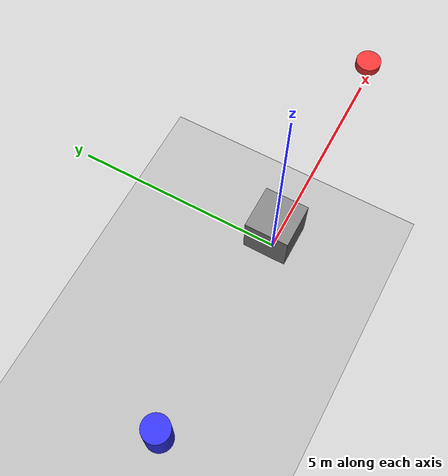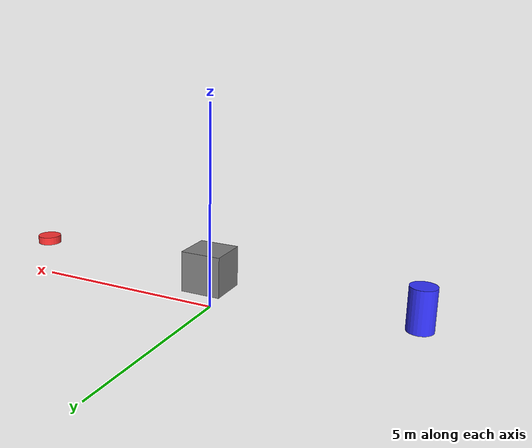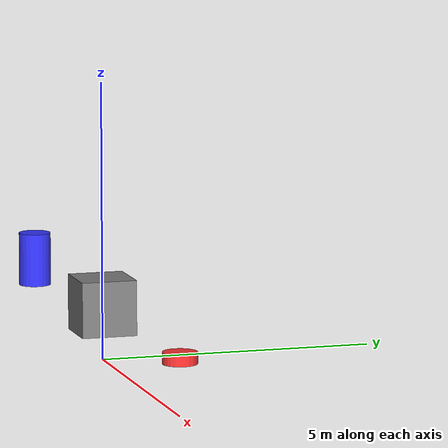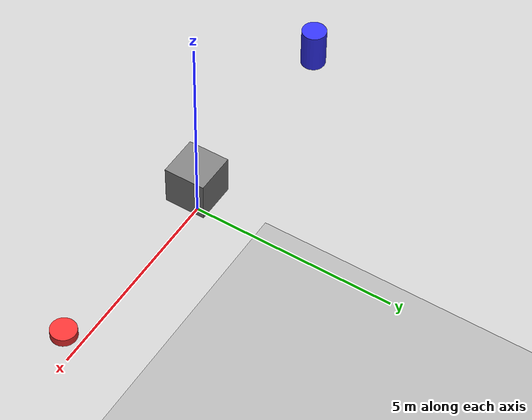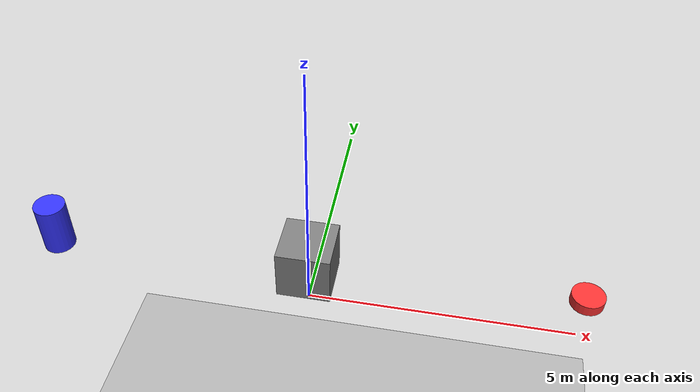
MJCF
<mujoco>
  <option gravity="0 0 -9.81"/>
  <worldbody>
    <!-- Support -->
    <body name="support" pos="0 0 1">
      <geom type="box" size="0.5 0.5 0.5" rgba="0.5 0.5 0.5 1"/>
    </body>
    <!-- Ground Surface -->
    <body name="surface" pos="-10 0 -10">
      <geom type="plane" size="30 30 0.1" rgba="0.7 0.7 0.7 1" friction="1 1 1"/>
    </body>
    <!-- Solid Cylinder -->
    <body name="solid_cylinder" pos="-5 0 1">
      <geom type="cylinder" size="0.3 0.5" density="1" rgba="0.2 0.2 1 1"/>
      <joint name="solid_cylinder_joint" type="free"/>
    </body>
    <!-- Ring -->
    <body name="ring" pos="5 0 1">
      <geom type="cylinder" size="0.3 0.1" density="1" rgba="1 0.2 0.2 1"/>
      <joint name="ring_joint" type="free"/>
    </body>
  </worldbody>
</mujoco>
